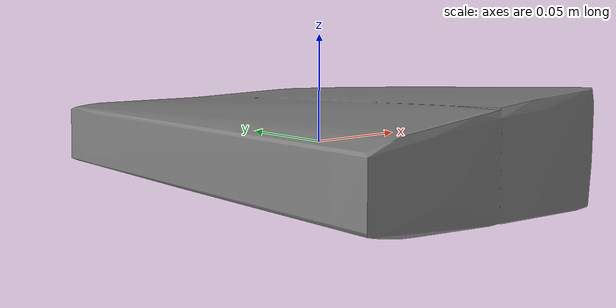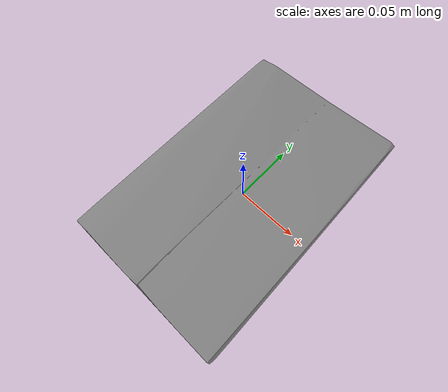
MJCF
<mujoco model="book_Eat_to_Live_The_Amazing_NutrientRich_Program_for_Fast_and_Sustained_Weight_Loss_Revised_Edition_Book_M">
  <default>
    <default class="visual">
      <geom group="2" type="mesh" contype="0" conaffinity="0" />
    </default>
    <default class="collision">
      <geom group="3" type="mesh" />
    </default>
  </default>
  <asset>
    <mesh file="book_Eat_to_Live_The_Amazing_NutrientRich_Program_for_Fast_and_Sustained_Weight_Loss_Revised_Edition_Book_M.stl" />
    <mesh file="book_Eat_to_Live_The_Amazing_NutrientRich_Program_for_Fast_and_Sustained_Weight_Loss_Revised_Edition_Book_M_collision_0.stl" />
    <mesh file="book_Eat_to_Live_The_Amazing_NutrientRich_Program_for_Fast_and_Sustained_Weight_Loss_Revised_Edition_Book_M_collision_1.stl" />
    <mesh file="book_Eat_to_Live_The_Amazing_NutrientRich_Program_for_Fast_and_Sustained_Weight_Loss_Revised_Edition_Book_M_collision_2.stl" />
    <mesh file="book_Eat_to_Live_The_Amazing_NutrientRich_Program_for_Fast_and_Sustained_Weight_Loss_Revised_Edition_Book_M_collision_3.stl" />
    <mesh file="book_Eat_to_Live_The_Amazing_NutrientRich_Program_for_Fast_and_Sustained_Weight_Loss_Revised_Edition_Book_M_collision_4.stl" />
    <mesh file="book_Eat_to_Live_The_Amazing_NutrientRich_Program_for_Fast_and_Sustained_Weight_Loss_Revised_Edition_Book_M_collision_5.stl" />
    <mesh file="book_Eat_to_Live_The_Amazing_NutrientRich_Program_for_Fast_and_Sustained_Weight_Loss_Revised_Edition_Book_M_collision_6.stl" />
    <mesh file="book_Eat_to_Live_The_Amazing_NutrientRich_Program_for_Fast_and_Sustained_Weight_Loss_Revised_Edition_Book_M_collision_7.stl" />
    <mesh file="book_Eat_to_Live_The_Amazing_NutrientRich_Program_for_Fast_and_Sustained_Weight_Loss_Revised_Edition_Book_M_collision_8.stl" />
    <mesh file="book_Eat_to_Live_The_Amazing_NutrientRich_Program_for_Fast_and_Sustained_Weight_Loss_Revised_Edition_Book_M_collision_9.stl" />
    <mesh file="book_Eat_to_Live_The_Amazing_NutrientRich_Program_for_Fast_and_Sustained_Weight_Loss_Revised_Edition_Book_M_collision_10.stl" />
    <mesh file="book_Eat_to_Live_The_Amazing_NutrientRich_Program_for_Fast_and_Sustained_Weight_Loss_Revised_Edition_Book_M_collision_11.stl" />
    <mesh file="book_Eat_to_Live_The_Amazing_NutrientRich_Program_for_Fast_and_Sustained_Weight_Loss_Revised_Edition_Book_M_collision_12.stl" />
    <mesh file="book_Eat_to_Live_The_Amazing_NutrientRich_Program_for_Fast_and_Sustained_Weight_Loss_Revised_Edition_Book_M_collision_13.stl" />
    <mesh file="book_Eat_to_Live_The_Amazing_NutrientRich_Program_for_Fast_and_Sustained_Weight_Loss_Revised_Edition_Book_M_collision_14.stl" />
    <mesh file="book_Eat_to_Live_The_Amazing_NutrientRich_Program_for_Fast_and_Sustained_Weight_Loss_Revised_Edition_Book_M_collision_15.stl" />
  </asset>
  <worldbody>
    <body name="book_Eat_to_Live_The_Amazing_NutrientRich_Program_for_Fast_and_Sustained_Weight_Loss_Revised_Edition_Book_M">
      <geom mesh="book_Eat_to_Live_The_Amazing_NutrientRich_Program_for_Fast_and_Sustained_Weight_Loss_Revised_Edition_Book_M" class="visual" />
      <geom mesh="book_Eat_to_Live_The_Amazing_NutrientRich_Program_for_Fast_and_Sustained_Weight_Loss_Revised_Edition_Book_M_collision_0" class="collision" />
      <geom mesh="book_Eat_to_Live_The_Amazing_NutrientRich_Program_for_Fast_and_Sustained_Weight_Loss_Revised_Edition_Book_M_collision_1" class="collision" />
      <geom mesh="book_Eat_to_Live_The_Amazing_NutrientRich_Program_for_Fast_and_Sustained_Weight_Loss_Revised_Edition_Book_M_collision_2" class="collision" />
      <geom mesh="book_Eat_to_Live_The_Amazing_NutrientRich_Program_for_Fast_and_Sustained_Weight_Loss_Revised_Edition_Book_M_collision_3" class="collision" />
      <geom mesh="book_Eat_to_Live_The_Amazing_NutrientRich_Program_for_Fast_and_Sustained_Weight_Loss_Revised_Edition_Book_M_collision_4" class="collision" />
      <geom mesh="book_Eat_to_Live_The_Amazing_NutrientRich_Program_for_Fast_and_Sustained_Weight_Loss_Revised_Edition_Book_M_collision_5" class="collision" />
      <geom mesh="book_Eat_to_Live_The_Amazing_NutrientRich_Program_for_Fast_and_Sustained_Weight_Loss_Revised_Edition_Book_M_collision_6" class="collision" />
      <geom mesh="book_Eat_to_Live_The_Amazing_NutrientRich_Program_for_Fast_and_Sustained_Weight_Loss_Revised_Edition_Book_M_collision_7" class="collision" />
      <geom mesh="book_Eat_to_Live_The_Amazing_NutrientRich_Program_for_Fast_and_Sustained_Weight_Loss_Revised_Edition_Book_M_collision_8" class="collision" />
      <geom mesh="book_Eat_to_Live_The_Amazing_NutrientRich_Program_for_Fast_and_Sustained_Weight_Loss_Revised_Edition_Book_M_collision_9" class="collision" />
      <geom mesh="book_Eat_to_Live_The_Amazing_NutrientRich_Program_for_Fast_and_Sustained_Weight_Loss_Revised_Edition_Book_M_collision_10" class="collision" />
      <geom mesh="book_Eat_to_Live_The_Amazing_NutrientRich_Program_for_Fast_and_Sustained_Weight_Loss_Revised_Edition_Book_M_collision_11" class="collision" />
      <geom mesh="book_Eat_to_Live_The_Amazing_NutrientRich_Program_for_Fast_and_Sustained_Weight_Loss_Revised_Edition_Book_M_collision_12" class="collision" />
      <geom mesh="book_Eat_to_Live_The_Amazing_NutrientRich_Program_for_Fast_and_Sustained_Weight_Loss_Revised_Edition_Book_M_collision_13" class="collision" />
      <geom mesh="book_Eat_to_Live_The_Amazing_NutrientRich_Program_for_Fast_and_Sustained_Weight_Loss_Revised_Edition_Book_M_collision_14" class="collision" />
      <geom mesh="book_Eat_to_Live_The_Amazing_NutrientRich_Program_for_Fast_and_Sustained_Weight_Loss_Revised_Edition_Book_M_collision_15" class="collision" />
    </body>
  </worldbody>
</mujoco>
